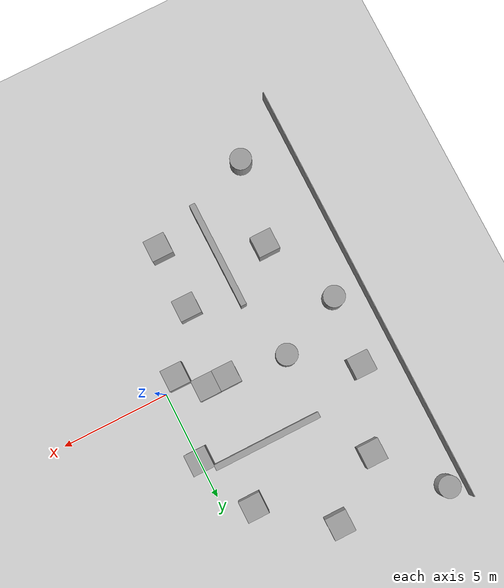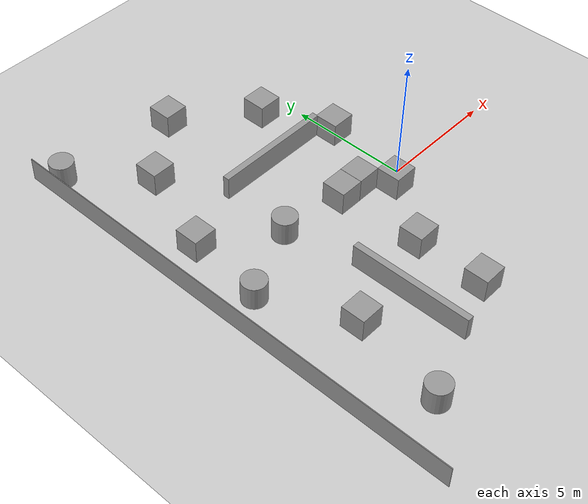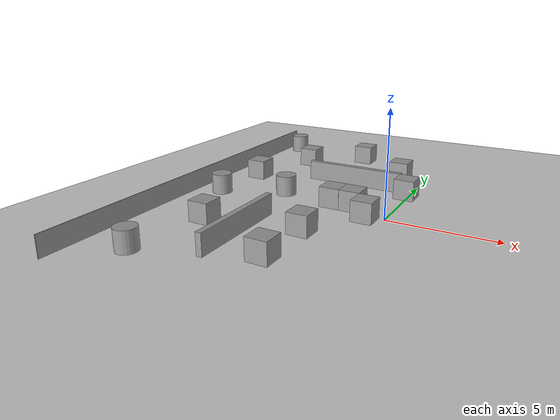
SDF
<sdf version="1.7">
 <world name="default">
  <model name="ground_plane">
   <static>1</static>
   <link name="link">
    <collision name="collision">
     <geometry><plane><normal>0 0 1</normal><size>100 100</size></plane></geometry>
     <surface>
      <contact><collide_bitmask>65535</collide_bitmask></contact>
      <friction><ode><mu>100</mu><mu2>50</mu2></ode></friction>
     </surface>
    </collision>
    <visual name="visual">
     <cast_shadows>0</cast_shadows>
     <geometry><plane><normal>0 0 1</normal><size>100 100</size></plane></geometry>
     <material>
      <script><uri>file://media/materials/scripts/gazebo.material</uri><name>Gazebo/Grey</name></script>
     </material>
    </visual>
   </link>
  </model>
  <model name="m">
   <link name="link_0_clone_0_clone">
    <inertial>
     <mass>0.665554</mass>
     <inertia><ixx>0.0555244</ixx><ixy>0</ixy><ixz>0</ixz><iyy>22.0844</iyy><iyz>0</iyz><izz>22.029</izz></inertia>
    </inertial>
    <pose>-9.73471 -1.11767 0 0 0 -1.57281</pose>
    <visual name="visual">
     <geometry><box><size>19.9295 0.033323 1</size></box></geometry>
     <material>
      <lighting>1</lighting>
      <script><uri>file://media/materials/scripts/gazebo.material</uri><name>Gazebo/Grey</name></script>
      <shader type="pixel"><normal_map>__default__</normal_map></shader>
     </material>
    </visual>
    <collision name="collision">
     <geometry><box><size>19.9295 0.033323 1</size></box></geometry>
     <surface>
      <friction>
       <ode><mu>1</mu><mu2>1</mu2><fdir1>0 0 0</fdir1><slip1>0</slip1><slip2>0</slip2></ode>
       <torsional>
        <coefficient>1</coefficient>
        <patch_radius>0</patch_radius>
        <surface_radius>0</surface_radius>
        <use_patch_radius>1</use_patch_radius>
        <ode><slip>0</slip></ode>
       </torsional>
      </friction>
      <bounce><restitution_coefficient>0</restitution_coefficient><threshold>1e+06</threshold></bounce>
      <contact>
       <collide_without_contact>0</collide_without_contact>
       <collide_without_contact_bitmask>1</collide_without_contact_bitmask>
       <collide_bitmask>1</collide_bitmask>
       <ode>
        <soft_cfm>0</soft_cfm>
        <soft_erp>0.2</soft_erp>
        <kp>1e+13</kp>
        <kd>1</kd>
        <max_vel>0.01</max_vel>
        <min_depth>0</min_depth>
       </ode>
       <bullet>
        <split_impulse>1</split_impulse>
        <split_impulse_penetration_threshold>-0.01</split_impulse_penetration_threshold>
        <soft_cfm>0</soft_cfm>
        <soft_erp>0.2</soft_erp>
        <kp>1e+13</kp>
        <kd>1</kd>
       </bullet>
      </contact>
     </surface>
    </collision>
   </link>
   <link name="link_12_clone">
    <inertial>
     <mass>1</mass>
     <inertia>
      <ixx>0.166667</ixx>
      <ixy>0</ixy>
      <ixz>0</ixz>
      <iyy>0.166667</iyy>
      <iyz>0</iyz>
      <izz>0.166667</izz>
     </inertia>
    </inertial>
    <pose>-2.46639 -6.9622 -0 0 -0 0</pose>
    <visual name="visual">
     <geometry><box><size>1 1 1</size></box></geometry>
     <material>
      <lighting>1</lighting>
      <script><uri>file://media/materials/scripts/gazebo.material</uri><name>Gazebo/Grey</name></script>
      <shader type="pixel"/>
     </material>
    </visual>
    <collision name="collision">
     <geometry><box><size>1 1 1</size></box></geometry>
     <surface>
      <friction>
       <ode><mu>1</mu><mu2>1</mu2><fdir1>0 0 0</fdir1><slip1>0</slip1><slip2>0</slip2></ode>
       <torsional>
        <coefficient>1</coefficient>
        <patch_radius>0</patch_radius>
        <surface_radius>0</surface_radius>
        <use_patch_radius>1</use_patch_radius>
        <ode><slip>0</slip></ode>
       </torsional>
      </friction>
      <bounce><restitution_coefficient>0</restitution_coefficient><threshold>1e+06</threshold></bounce>
      <contact>
       <collide_without_contact>0</collide_without_contact>
       <collide_without_contact_bitmask>1</collide_without_contact_bitmask>
       <collide_bitmask>1</collide_bitmask>
       <ode>
        <soft_cfm>0</soft_cfm>
        <soft_erp>0.2</soft_erp>
        <kp>1e+13</kp>
        <kd>1</kd>
        <max_vel>0.01</max_vel>
        <min_depth>0</min_depth>
       </ode>
       <bullet>
        <split_impulse>1</split_impulse>
        <split_impulse_penetration_threshold>-0.01</split_impulse_penetration_threshold>
        <soft_cfm>0</soft_cfm>
        <soft_erp>0.2</soft_erp>
        <kp>1e+13</kp>
        <kd>1</kd>
       </bullet>
      </contact>
     </surface>
    </collision>
   </link>
   <link name="link_13">
    <inertial>
     <mass>1</mass>
     <inertia><ixx>0.145833</ixx><ixy>0</ixy><ixz>0</ixz><iyy>0.145833</iyy><iyz>0</iyz><izz>0.125</izz></inertia>
    </inertial>
    <pose>-5.35505 -0.19432 -0 0 -0 0</pose>
    <visual name="visual">
     <geometry><cylinder><radius>0.5</radius><length>1</length></cylinder></geometry>
     <material>
      <lighting>1</lighting>
      <script><uri>file://media/materials/scripts/gazebo.material</uri><name>Gazebo/Grey</name></script>
      <shader type="pixel"/>
     </material>
    </visual>
    <collision name="collision">
     <geometry><cylinder><radius>0.5</radius><length>1</length></cylinder></geometry>
     <surface>
      <friction>
       <ode><mu>1</mu><mu2>1</mu2><fdir1>0 0 0</fdir1><slip1>0</slip1><slip2>0</slip2></ode>
       <torsional>
        <coefficient>1</coefficient>
        <patch_radius>0</patch_radius>
        <surface_radius>0</surface_radius>
        <use_patch_radius>1</use_patch_radius>
        <ode><slip>0</slip></ode>
       </torsional>
      </friction>
      <bounce><restitution_coefficient>0</restitution_coefficient><threshold>1e+06</threshold></bounce>
      <contact>
       <collide_without_contact>0</collide_without_contact>
       <collide_without_contact_bitmask>1</collide_without_contact_bitmask>
       <collide_bitmask>1</collide_bitmask>
       <ode>
        <soft_cfm>0</soft_cfm>
        <soft_erp>0.2</soft_erp>
        <kp>1e+13</kp>
        <kd>1</kd>
        <max_vel>0.01</max_vel>
        <min_depth>0</min_depth>
       </ode>
       <bullet>
        <split_impulse>1</split_impulse>
        <split_impulse_penetration_threshold>-0.01</split_impulse_penetration_threshold>
        <soft_cfm>0</soft_cfm>
        <soft_erp>0.2</soft_erp>
        <kp>1e+13</kp>
        <kd>1</kd>
       </bullet>
      </contact>
     </surface>
    </collision>
   </link>
   <link name="link_14">
    <inertial>
     <mass>1</mass>
     <inertia><ixx>0.145833</ixx><ixy>0</ixy><ixz>0</ixz><iyy>0.145833</iyy><iyz>0</iyz><izz>0.125</izz></inertia>
    </inertial>
    <pose>-8.3538 -1.5149 0 0 -0 0</pose>
    <visual name="visual">
     <geometry><cylinder><radius>0.5</radius><length>1</length></cylinder></geometry>
     <material>
      <lighting>1</lighting>
      <script><uri>file://media/materials/scripts/gazebo.material</uri><name>Gazebo/Grey</name></script>
      <shader type="pixel"/>
     </material>
    </visual>
    <collision name="collision">
     <geometry><cylinder><radius>0.5</radius><length>1</length></cylinder></geometry>
     <surface>
      <friction>
       <ode><mu>1</mu><mu2>1</mu2><fdir1>0 0 0</fdir1><slip1>0</slip1><slip2>0</slip2></ode>
       <torsional>
        <coefficient>1</coefficient>
        <patch_radius>0</patch_radius>
        <surface_radius>0</surface_radius>
        <use_patch_radius>1</use_patch_radius>
        <ode><slip>0</slip></ode>
       </torsional>
      </friction>
      <bounce><restitution_coefficient>0</restitution_coefficient><threshold>1e+06</threshold></bounce>
      <contact>
       <collide_without_contact>0</collide_without_contact>
       <collide_without_contact_bitmask>1</collide_without_contact_bitmask>
       <collide_bitmask>1</collide_bitmask>
       <ode>
        <soft_cfm>0</soft_cfm>
        <soft_erp>0.2</soft_erp>
        <kp>1e+13</kp>
        <kd>1</kd>
        <max_vel>0.01</max_vel>
        <min_depth>0</min_depth>
       </ode>
       <bullet>
        <split_impulse>1</split_impulse>
        <split_impulse_penetration_threshold>-0.01</split_impulse_penetration_threshold>
        <soft_cfm>0</soft_cfm>
        <soft_erp>0.2</soft_erp>
        <kp>1e+13</kp>
        <kd>1</kd>
       </bullet>
      </contact>
     </surface>
    </collision>
   </link>
   <link name="link_15">
    <inertial>
     <mass>1</mass>
     <inertia>
      <ixx>0.166667</ixx>
      <ixy>0</ixy>
      <ixz>0</ixz>
      <iyy>0.166667</iyy>
      <iyz>0</iyz>
      <izz>0.166667</izz>
     </inertia>
    </inertial>
    <pose>-6.73247 -4.99641 0.006202 0 -0 0</pose>
    <visual name="visual">
     <geometry><box><size>1 1 1</size></box></geometry>
     <material>
      <lighting>1</lighting>
      <script><uri>file://media/materials/scripts/gazebo.material</uri><name>Gazebo/Grey</name></script>
      <shader type="pixel"/>
     </material>
    </visual>
    <collision name="collision">
     <geometry><box><size>1 1 1</size></box></geometry>
     <surface>
      <friction>
       <ode><mu>1</mu><mu2>1</mu2><fdir1>0 0 0</fdir1><slip1>0</slip1><slip2>0</slip2></ode>
       <torsional>
        <coefficient>1</coefficient>
        <patch_radius>0</patch_radius>
        <surface_radius>0</surface_radius>
        <use_patch_radius>1</use_patch_radius>
        <ode><slip>0</slip></ode>
       </torsional>
      </friction>
      <bounce><restitution_coefficient>0</restitution_coefficient><threshold>1e+06</threshold></bounce>
      <contact>
       <collide_without_contact>0</collide_without_contact>
       <collide_without_contact_bitmask>1</collide_without_contact_bitmask>
       <collide_bitmask>1</collide_bitmask>
       <ode>
        <soft_cfm>0</soft_cfm>
        <soft_erp>0.2</soft_erp>
        <kp>1e+13</kp>
        <kd>1</kd>
        <max_vel>0.01</max_vel>
        <min_depth>0</min_depth>
       </ode>
       <bullet>
        <split_impulse>1</split_impulse>
        <split_impulse_penetration_threshold>-0.01</split_impulse_penetration_threshold>
        <soft_cfm>0</soft_cfm>
        <soft_erp>0.2</soft_erp>
        <kp>1e+13</kp>
        <kd>1</kd>
       </bullet>
      </contact>
     </surface>
    </collision>
   </link>
   <link name="link_16">
    <inertial>
     <mass>1</mass>
     <inertia>
      <ixx>0.166667</ixx>
      <ixy>0</ixy>
      <ixz>0</ixz>
      <iyy>0.166667</iyy>
      <iyz>0</iyz>
      <izz>0.166667</izz>
     </inertia>
    </inertial>
    <pose>0.092071 2.17183 -0 0 -0 0</pose>
    <visual name="visual">
     <geometry><box><size>1 1 1</size></box></geometry>
     <material>
      <lighting>1</lighting>
      <script><uri>file://media/materials/scripts/gazebo.material</uri><name>Gazebo/Grey</name></script>
      <shader type="pixel"/>
     </material>
    </visual>
    <collision name="collision">
     <geometry><box><size>1 1 1</size></box></geometry>
     <surface>
      <friction>
       <ode><mu>1</mu><mu2>1</mu2><fdir1>0 0 0</fdir1><slip1>0</slip1><slip2>0</slip2></ode>
       <torsional>
        <coefficient>1</coefficient>
        <patch_radius>0</patch_radius>
        <surface_radius>0</surface_radius>
        <use_patch_radius>1</use_patch_radius>
        <ode><slip>0</slip></ode>
       </torsional>
      </friction>
      <bounce><restitution_coefficient>0</restitution_coefficient><threshold>1e+06</threshold></bounce>
      <contact>
       <collide_without_contact>0</collide_without_contact>
       <collide_without_contact_bitmask>1</collide_without_contact_bitmask>
       <collide_bitmask>1</collide_bitmask>
       <ode>
        <soft_cfm>0</soft_cfm>
        <soft_erp>0.2</soft_erp>
        <kp>1e+13</kp>
        <kd>1</kd>
        <max_vel>0.01</max_vel>
        <min_depth>0</min_depth>
       </ode>
       <bullet>
        <split_impulse>1</split_impulse>
        <split_impulse_penetration_threshold>-0.01</split_impulse_penetration_threshold>
        <soft_cfm>0</soft_cfm>
        <soft_erp>0.2</soft_erp>
        <kp>1e+13</kp>
        <kd>1</kd>
       </bullet>
      </contact>
     </surface>
    </collision>
   </link>
   <link name="link_17">
    <inertial>
     <mass>1</mass>
     <inertia>
      <ixx>0.166667</ixx>
      <ixy>0</ixy>
      <ixz>0</ixz>
      <iyy>0.166667</iyy>
      <iyz>0</iyz>
      <izz>0.166667</izz>
     </inertia>
    </inertial>
    <pose>-1.59709 -0.551127 0 0 -0 0</pose>
    <visual name="visual">
     <geometry><box><size>1 1 1</size></box></geometry>
     <material>
      <lighting>1</lighting>
      <script><uri>file://media/materials/scripts/gazebo.material</uri><name>Gazebo/Grey</name></script>
      <shader type="pixel"/>
     </material>
    </visual>
    <collision name="collision">
     <geometry><box><size>1 1 1</size></box></geometry>
     <surface>
      <friction>
       <ode><mu>1</mu><mu2>1</mu2><fdir1>0 0 0</fdir1><slip1>0</slip1><slip2>0</slip2></ode>
       <torsional>
        <coefficient>1</coefficient>
        <patch_radius>0</patch_radius>
        <surface_radius>0</surface_radius>
        <use_patch_radius>1</use_patch_radius>
        <ode><slip>0</slip></ode>
       </torsional>
      </friction>
      <bounce><restitution_coefficient>0</restitution_coefficient><threshold>1e+06</threshold></bounce>
      <contact>
       <collide_without_contact>0</collide_without_contact>
       <collide_without_contact_bitmask>1</collide_without_contact_bitmask>
       <collide_bitmask>1</collide_bitmask>
       <ode>
        <soft_cfm>0</soft_cfm>
        <soft_erp>0.2</soft_erp>
        <kp>1e+13</kp>
        <kd>1</kd>
        <max_vel>0.01</max_vel>
        <min_depth>0</min_depth>
       </ode>
       <bullet>
        <split_impulse>1</split_impulse>
        <split_impulse_penetration_threshold>-0.01</split_impulse_penetration_threshold>
        <soft_cfm>0</soft_cfm>
        <soft_erp>0.2</soft_erp>
        <kp>1e+13</kp>
        <kd>1</kd>
       </bullet>
      </contact>
     </surface>
    </collision>
   </link>
   <link name="link_18">
    <inertial>
     <mass>1</mass>
     <inertia>
      <ixx>0.166667</ixx>
      <ixy>0</ixy>
      <ixz>0</ixz>
      <iyy>0.166667</iyy>
      <iyz>0</iyz>
      <izz>0.166667</izz>
     </inertia>
    </inertial>
    <pose>-0.60758 -1.54069 -0 0 -0 0</pose>
    <visual name="visual">
     <geometry><box><size>1 1 1</size></box></geometry>
     <material>
      <lighting>1</lighting>
      <script><uri>file://media/materials/scripts/gazebo.material</uri><name>Gazebo/Grey</name></script>
      <shader type="pixel"/>
     </material>
    </visual>
    <collision name="collision">
     <geometry><box><size>1 1 1</size></box></geometry>
     <surface>
      <friction>
       <ode><mu>1</mu><mu2>1</mu2><fdir1>0 0 0</fdir1><slip1>0</slip1><slip2>0</slip2></ode>
       <torsional>
        <coefficient>1</coefficient>
        <patch_radius>0</patch_radius>
        <surface_radius>0</surface_radius>
        <use_patch_radius>1</use_patch_radius>
        <ode><slip>0</slip></ode>
       </torsional>
      </friction>
      <bounce><restitution_coefficient>0</restitution_coefficient><threshold>1e+06</threshold></bounce>
      <contact>
       <collide_without_contact>0</collide_without_contact>
       <collide_without_contact_bitmask>1</collide_without_contact_bitmask>
       <collide_bitmask>1</collide_bitmask>
       <ode>
        <soft_cfm>0</soft_cfm>
        <soft_erp>0.2</soft_erp>
        <kp>1e+13</kp>
        <kd>1</kd>
        <max_vel>0.01</max_vel>
        <min_depth>0</min_depth>
       </ode>
       <bullet>
        <split_impulse>1</split_impulse>
        <split_impulse_penetration_threshold>-0.01</split_impulse_penetration_threshold>
        <soft_cfm>0</soft_cfm>
        <soft_erp>0.2</soft_erp>
        <kp>1e+13</kp>
        <kd>1</kd>
       </bullet>
      </contact>
     </surface>
    </collision>
   </link>
   <link name="link_19">
    <inertial>
     <mass>1</mass>
     <inertia>
      <ixx>0.166667</ixx>
      <ixy>0</ixy>
      <ixz>0</ixz>
      <iyy>0.166667</iyy>
      <iyz>0</iyz>
      <izz>0.166667</izz>
     </inertia>
    </inertial>
    <pose>-2.59814 -0.556156 -8.7e-05 0 -0 0</pose>
    <visual name="visual">
     <geometry><box><size>1 1 1</size></box></geometry>
     <material>
      <lighting>1</lighting>
      <script><uri>file://media/materials/scripts/gazebo.material</uri><name>Gazebo/Grey</name></script>
      <shader type="pixel"/>
     </material>
    </visual>
    <collision name="collision">
     <geometry><box><size>1 1 1</size></box></geometry>
     <surface>
      <friction>
       <ode><mu>1</mu><mu2>1</mu2><fdir1>0 0 0</fdir1><slip1>0</slip1><slip2>0</slip2></ode>
       <torsional>
        <coefficient>1</coefficient>
        <patch_radius>0</patch_radius>
        <surface_radius>0</surface_radius>
        <use_patch_radius>1</use_patch_radius>
        <ode><slip>0</slip></ode>
       </torsional>
      </friction>
      <bounce><restitution_coefficient>0</restitution_coefficient><threshold>1e+06</threshold></bounce>
      <contact>
       <collide_without_contact>0</collide_without_contact>
       <collide_without_contact_bitmask>1</collide_without_contact_bitmask>
       <collide_bitmask>1</collide_bitmask>
       <ode>
        <soft_cfm>0</soft_cfm>
        <soft_erp>0.2</soft_erp>
        <kp>1e+13</kp>
        <kd>1</kd>
        <max_vel>0.01</max_vel>
        <min_depth>0</min_depth>
       </ode>
       <bullet>
        <split_impulse>1</split_impulse>
        <split_impulse_penetration_threshold>-0.01</split_impulse_penetration_threshold>
        <soft_cfm>0</soft_cfm>
        <soft_erp>0.2</soft_erp>
        <kp>1e+13</kp>
        <kd>1</kd>
       </bullet>
      </contact>
     </surface>
    </collision>
   </link>
   <link name="link_1_2">
    <inertial>
     <mass>1</mass>
     <inertia><ixx>0.145833</ixx><ixy>0</ixy><ixz>0</ixz><iyy>0.145833</iyy><iyz>0</iyz><izz>0.125</izz></inertia>
    </inertial>
    <pose>-8.97748 8.01226 -0.073784 -0.00386 0 0</pose>
    <visual name="visual">
     <geometry><cylinder><radius>0.5</radius><length>1</length></cylinder></geometry>
     <material>
      <lighting>1</lighting>
      <script><uri>file://media/materials/scripts/gazebo.material</uri><name>Gazebo/Grey</name></script>
      <shader type="pixel"/>
     </material>
    </visual>
    <collision name="collision">
     <geometry><cylinder><radius>0.5</radius><length>1</length></cylinder></geometry>
     <surface>
      <friction>
       <ode><mu>1</mu><mu2>1</mu2><fdir1>0 0 0</fdir1><slip1>0</slip1><slip2>0</slip2></ode>
       <torsional>
        <coefficient>1</coefficient>
        <patch_radius>0</patch_radius>
        <surface_radius>0</surface_radius>
        <use_patch_radius>1</use_patch_radius>
        <ode><slip>0</slip></ode>
       </torsional>
      </friction>
      <bounce><restitution_coefficient>0</restitution_coefficient><threshold>1e+06</threshold></bounce>
      <contact>
       <collide_without_contact>0</collide_without_contact>
       <collide_without_contact_bitmask>1</collide_without_contact_bitmask>
       <collide_bitmask>1</collide_bitmask>
       <ode>
        <soft_cfm>0</soft_cfm>
        <soft_erp>0.2</soft_erp>
        <kp>1e+13</kp>
        <kd>1</kd>
        <max_vel>0.01</max_vel>
        <min_depth>0</min_depth>
       </ode>
       <bullet>
        <split_impulse>1</split_impulse>
        <split_impulse_penetration_threshold>-0.01</split_impulse_penetration_threshold>
        <soft_cfm>0</soft_cfm>
        <soft_erp>0.2</soft_erp>
        <kp>1e+13</kp>
        <kd>1</kd>
       </bullet>
      </contact>
     </surface>
    </collision>
   </link>
   <link name="link_1_clone">
    <inertial>
     <mass>1.36399</mass>
     <inertia><ixx>0.122135</ixx><ixy>0</ixy><ixz>0</ixz><iyy>2.98899</iyy><iyz>0</iyz><izz>2.88379</izz></inertia>
    </inertial>
    <pose>-2.8992 2.7445 -0 0 -0 0</pose>
    <visual name="visual">
     <geometry><box><size>5.02953 0.272957 1</size></box></geometry>
     <material>
      <lighting>1</lighting>
      <script><uri>file://media/materials/scripts/gazebo.material</uri><name>Gazebo/Grey</name></script>
      <shader type="pixel"/>
     </material>
    </visual>
    <collision name="collision">
     <geometry><box><size>5.02953 0.272957 1</size></box></geometry>
     <surface>
      <friction>
       <ode><mu>1</mu><mu2>1</mu2><fdir1>0 0 0</fdir1><slip1>0</slip1><slip2>0</slip2></ode>
       <torsional>
        <coefficient>1</coefficient>
        <patch_radius>0</patch_radius>
        <surface_radius>0</surface_radius>
        <use_patch_radius>1</use_patch_radius>
        <ode><slip>0</slip></ode>
       </torsional>
      </friction>
      <bounce><restitution_coefficient>0</restitution_coefficient><threshold>1e+06</threshold></bounce>
      <contact>
       <collide_without_contact>0</collide_without_contact>
       <collide_without_contact_bitmask>1</collide_without_contact_bitmask>
       <collide_bitmask>1</collide_bitmask>
       <ode>
        <soft_cfm>0</soft_cfm>
        <soft_erp>0.2</soft_erp>
        <kp>1e+13</kp>
        <kd>1</kd>
        <max_vel>0.01</max_vel>
        <min_depth>0</min_depth>
       </ode>
       <bullet>
        <split_impulse>1</split_impulse>
        <split_impulse_penetration_threshold>-0.01</split_impulse_penetration_threshold>
        <soft_cfm>0</soft_cfm>
        <soft_erp>0.2</soft_erp>
        <kp>1e+13</kp>
        <kd>1</kd>
       </bullet>
      </contact>
     </surface>
    </collision>
   </link>
   <link name="link_1_clone_0_clone_clone_clone">
    <inertial>
     <mass>1.36399</mass>
     <inertia><ixx>0.122135</ixx><ixy>0</ixy><ixz>0</ixz><iyy>2.98899</iyy><iyz>0</iyz><izz>2.88379</izz></inertia>
    </inertial>
    <pose>-4.65491 -5.47844 0 0 -0 1.57366</pose>
    <visual name="visual">
     <geometry><box><size>5.02953 0.272957 1</size></box></geometry>
     <material>
      <lighting>1</lighting>
      <script><uri>file://media/materials/scripts/gazebo.material</uri><name>Gazebo/Grey</name></script>
      <shader type="pixel"/>
     </material>
    </visual>
    <collision name="collision">
     <geometry><box><size>5.02953 0.272957 1</size></box></geometry>
     <surface>
      <friction>
       <ode><mu>1</mu><mu2>1</mu2><fdir1>0 0 0</fdir1><slip1>0</slip1><slip2>0</slip2></ode>
       <torsional>
        <coefficient>1</coefficient>
        <patch_radius>0</patch_radius>
        <surface_radius>0</surface_radius>
        <use_patch_radius>1</use_patch_radius>
        <ode><slip>0</slip></ode>
       </torsional>
      </friction>
      <bounce><restitution_coefficient>0</restitution_coefficient><threshold>1e+06</threshold></bounce>
      <contact>
       <collide_without_contact>0</collide_without_contact>
       <collide_without_contact_bitmask>1</collide_without_contact_bitmask>
       <collide_bitmask>1</collide_bitmask>
       <ode>
        <soft_cfm>0</soft_cfm>
        <soft_erp>0.2</soft_erp>
        <kp>1e+13</kp>
        <kd>1</kd>
        <max_vel>0.01</max_vel>
        <min_depth>0</min_depth>
       </ode>
       <bullet>
        <split_impulse>1</split_impulse>
        <split_impulse_penetration_threshold>-0.01</split_impulse_penetration_threshold>
        <soft_cfm>0</soft_cfm>
        <soft_erp>0.2</soft_erp>
        <kp>1e+13</kp>
        <kd>1</kd>
       </bullet>
      </contact>
     </surface>
    </collision>
   </link>
   <link name="link_2">
    <inertial>
     <mass>1</mass>
     <inertia>
      <ixx>0.166667</ixx>
      <ixy>0</ixy>
      <ixz>0</ixz>
      <iyy>0.166667</iyy>
      <iyz>0</iyz>
      <izz>0.166667</izz>
     </inertia>
    </inertial>
    <pose>-6.69125 5.24709 0.000363 0 -0 0</pose>
    <visual name="visual">
     <geometry><box><size>1 1 1</size></box></geometry>
     <material>
      <lighting>1</lighting>
      <script><uri>file://media/materials/scripts/gazebo.material</uri><name>Gazebo/Grey</name></script>
      <shader type="pixel"><normal_map>__default__</normal_map></shader>
     </material>
    </visual>
    <collision name="collision">
     <geometry><box><size>1 1 1</size></box></geometry>
     <surface>
      <friction>
       <ode><mu>1</mu><mu2>1</mu2><fdir1>0 0 0</fdir1><slip1>0</slip1><slip2>0</slip2></ode>
       <torsional>
        <coefficient>1</coefficient>
        <patch_radius>0</patch_radius>
        <surface_radius>0</surface_radius>
        <use_patch_radius>1</use_patch_radius>
        <ode><slip>0</slip></ode>
       </torsional>
      </friction>
      <bounce><restitution_coefficient>0</restitution_coefficient><threshold>1e+06</threshold></bounce>
      <contact>
       <collide_without_contact>0</collide_without_contact>
       <collide_without_contact_bitmask>1</collide_without_contact_bitmask>
       <collide_bitmask>1</collide_bitmask>
       <ode>
        <soft_cfm>0</soft_cfm>
        <soft_erp>0.2</soft_erp>
        <kp>1e+13</kp>
        <kd>1</kd>
        <max_vel>0.01</max_vel>
        <min_depth>0</min_depth>
       </ode>
       <bullet>
        <split_impulse>1</split_impulse>
        <split_impulse_penetration_threshold>-0.01</split_impulse_penetration_threshold>
        <soft_cfm>0</soft_cfm>
        <soft_erp>0.2</soft_erp>
        <kp>1e+13</kp>
        <kd>1</kd>
       </bullet>
      </contact>
     </surface>
    </collision>
   </link>
   <link name="link_2_0">
    <inertial>
     <mass>1</mass>
     <inertia><ixx>0.145833</ixx><ixy>0</ixy><ixz>0</ixz><iyy>0.145833</iyy><iyz>0</iyz><izz>0.125</izz></inertia>
    </inertial>
    <pose>-7.48828 -8.83848 -0.011627 -0.004806 1e-06 0</pose>
    <visual name="visual">
     <geometry><cylinder><radius>0.5</radius><length>1</length></cylinder></geometry>
     <material>
      <lighting>1</lighting>
      <script><uri>file://media/materials/scripts/gazebo.material</uri><name>Gazebo/Grey</name></script>
      <shader type="pixel"/>
     </material>
    </visual>
    <collision name="collision">
     <geometry><cylinder><radius>0.5</radius><length>1</length></cylinder></geometry>
     <surface>
      <friction>
       <ode><mu>1</mu><mu2>1</mu2><fdir1>0 0 0</fdir1><slip1>0</slip1><slip2>0</slip2></ode>
       <torsional>
        <coefficient>1</coefficient>
        <patch_radius>0</patch_radius>
        <surface_radius>0</surface_radius>
        <use_patch_radius>1</use_patch_radius>
        <ode><slip>0</slip></ode>
       </torsional>
      </friction>
      <bounce><restitution_coefficient>0</restitution_coefficient><threshold>1e+06</threshold></bounce>
      <contact>
       <collide_without_contact>0</collide_without_contact>
       <collide_without_contact_bitmask>1</collide_without_contact_bitmask>
       <collide_bitmask>1</collide_bitmask>
       <ode>
        <soft_cfm>0</soft_cfm>
        <soft_erp>0.2</soft_erp>
        <kp>1e+13</kp>
        <kd>1</kd>
        <max_vel>0.01</max_vel>
        <min_depth>0</min_depth>
       </ode>
       <bullet>
        <split_impulse>1</split_impulse>
        <split_impulse_penetration_threshold>-0.01</split_impulse_penetration_threshold>
        <soft_cfm>0</soft_cfm>
        <soft_erp>0.2</soft_erp>
        <kp>1e+13</kp>
        <kd>1</kd>
       </bullet>
      </contact>
     </surface>
    </collision>
   </link>
   <link name="link_3">
    <inertial>
     <mass>1</mass>
     <inertia>
      <ixx>0.166667</ixx>
      <ixy>0</ixy>
      <ixz>0</ixz>
      <iyy>0.166667</iyy>
      <iyz>0</iyz>
      <izz>0.166667</izz>
     </inertia>
    </inertial>
    <pose>-4.05988 7.30851 -0.002959 0 -0 0</pose>
    <visual name="visual">
     <geometry><box><size>1 1 1</size></box></geometry>
     <material>
      <lighting>1</lighting>
      <script><uri>file://media/materials/scripts/gazebo.material</uri><name>Gazebo/Grey</name></script>
      <shader type="pixel"/>
     </material>
    </visual>
    <collision name="collision">
     <geometry><box><size>1 1 1</size></box></geometry>
     <surface>
      <friction>
       <ode><mu>1</mu><mu2>1</mu2><fdir1>0 0 0</fdir1><slip1>0</slip1><slip2>0</slip2></ode>
       <torsional>
        <coefficient>1</coefficient>
        <patch_radius>0</patch_radius>
        <surface_radius>0</surface_radius>
        <use_patch_radius>1</use_patch_radius>
        <ode><slip>0</slip></ode>
       </torsional>
      </friction>
      <bounce><restitution_coefficient>0</restitution_coefficient><threshold>1e+06</threshold></bounce>
      <contact>
       <collide_without_contact>0</collide_without_contact>
       <collide_without_contact_bitmask>1</collide_without_contact_bitmask>
       <collide_bitmask>1</collide_bitmask>
       <ode>
        <soft_cfm>0</soft_cfm>
        <soft_erp>0.2</soft_erp>
        <kp>1e+13</kp>
        <kd>1</kd>
        <max_vel>0.01</max_vel>
        <min_depth>0</min_depth>
       </ode>
       <bullet>
        <split_impulse>1</split_impulse>
        <split_impulse_penetration_threshold>-0.01</split_impulse_penetration_threshold>
        <soft_cfm>0</soft_cfm>
        <soft_erp>0.2</soft_erp>
        <kp>1e+13</kp>
        <kd>1</kd>
       </bullet>
      </contact>
     </surface>
    </collision>
   </link>
   <link name="link_3_0">
    <inertial>
     <mass>1</mass>
     <inertia>
      <ixx>0.166667</ixx>
      <ixy>0</ixy>
      <ixz>0</ixz>
      <iyy>0.166667</iyy>
      <iyz>0</iyz>
      <izz>0.166667</izz>
     </inertia>
    </inertial>
    <pose>-2.39736 -4.04043 -0.033908 -0.004806 1e-06 0</pose>
    <visual name="visual">
     <geometry><box><size>1 1 1</size></box></geometry>
     <material>
      <lighting>1</lighting>
      <script><uri>file://media/materials/scripts/gazebo.material</uri><name>Gazebo/Grey</name></script>
      <shader type="pixel"/>
     </material>
    </visual>
    <collision name="collision">
     <geometry><box><size>1 1 1</size></box></geometry>
     <surface>
      <friction>
       <ode><mu>1</mu><mu2>1</mu2><fdir1>0 0 0</fdir1><slip1>0</slip1><slip2>0</slip2></ode>
       <torsional>
        <coefficient>1</coefficient>
        <patch_radius>0</patch_radius>
        <surface_radius>0</surface_radius>
        <use_patch_radius>1</use_patch_radius>
        <ode><slip>0</slip></ode>
       </torsional>
      </friction>
      <bounce><restitution_coefficient>0</restitution_coefficient><threshold>1e+06</threshold></bounce>
      <contact>
       <collide_without_contact>0</collide_without_contact>
       <collide_without_contact_bitmask>1</collide_without_contact_bitmask>
       <collide_bitmask>1</collide_bitmask>
       <ode>
        <soft_cfm>0</soft_cfm>
        <soft_erp>0.2</soft_erp>
        <kp>1e+13</kp>
        <kd>1</kd>
        <max_vel>0.01</max_vel>
        <min_depth>0</min_depth>
       </ode>
       <bullet>
        <split_impulse>1</split_impulse>
        <split_impulse_penetration_threshold>-0.01</split_impulse_penetration_threshold>
        <soft_cfm>0</soft_cfm>
        <soft_erp>0.2</soft_erp>
        <kp>1e+13</kp>
        <kd>1</kd>
       </bullet>
      </contact>
     </surface>
    </collision>
   </link>
   <link name="link_4">
    <inertial>
     <mass>1</mass>
     <inertia>
      <ixx>0.166667</ixx>
      <ixy>0</ixy>
      <ixz>0</ixz>
      <iyy>0.166667</iyy>
      <iyz>0</iyz>
      <izz>0.166667</izz>
     </inertia>
    </inertial>
    <pose>-8.05296 1.65939 -0.00011 0 -0 0</pose>
    <visual name="visual">
     <geometry><box><size>1 1 1</size></box></geometry>
     <material>
      <lighting>1</lighting>
      <script><uri>file://media/materials/scripts/gazebo.material</uri><name>Gazebo/Grey</name></script>
      <shader type="pixel"/>
     </material>
    </visual>
    <collision name="collision">
     <geometry><box><size>1 1 1</size></box></geometry>
     <surface>
      <friction>
       <ode><mu>1</mu><mu2>1</mu2><fdir1>0 0 0</fdir1><slip1>0</slip1><slip2>0</slip2></ode>
       <torsional>
        <coefficient>1</coefficient>
        <patch_radius>0</patch_radius>
        <surface_radius>0</surface_radius>
        <use_patch_radius>1</use_patch_radius>
        <ode><slip>0</slip></ode>
       </torsional>
      </friction>
      <bounce><restitution_coefficient>0</restitution_coefficient><threshold>1e+06</threshold></bounce>
      <contact>
       <collide_without_contact>0</collide_without_contact>
       <collide_without_contact_bitmask>1</collide_without_contact_bitmask>
       <collide_bitmask>1</collide_bitmask>
       <ode>
        <soft_cfm>0</soft_cfm>
        <soft_erp>0.2</soft_erp>
        <kp>1e+13</kp>
        <kd>1</kd>
        <max_vel>0.01</max_vel>
        <min_depth>0</min_depth>
       </ode>
       <bullet>
        <split_impulse>1</split_impulse>
        <split_impulse_penetration_threshold>-0.01</split_impulse_penetration_threshold>
        <soft_cfm>0</soft_cfm>
        <soft_erp>0.2</soft_erp>
        <kp>1e+13</kp>
        <kd>1</kd>
       </bullet>
      </contact>
     </surface>
    </collision>
   </link>
   <link name="link_5">
    <inertial>
     <mass>1</mass>
     <inertia>
      <ixx>0.166667</ixx>
      <ixy>0</ixy>
      <ixz>0</ixz>
      <iyy>0.166667</iyy>
      <iyz>0</iyz>
      <izz>0.166667</izz>
     </inertia>
    </inertial>
    <pose>-1.10362 4.98196 -0 0 -0 0</pose>
    <visual name="visual">
     <geometry><box><size>1 1 1</size></box></geometry>
     <material>
      <lighting>1</lighting>
      <script><uri>file://media/materials/scripts/gazebo.material</uri><name>Gazebo/Grey</name></script>
      <shader type="pixel"/>
     </material>
    </visual>
    <collision name="collision">
     <geometry><box><size>1 1 1</size></box></geometry>
     <surface>
      <friction>
       <ode><mu>1</mu><mu2>1</mu2><fdir1>0 0 0</fdir1><slip1>0</slip1><slip2>0</slip2></ode>
       <torsional>
        <coefficient>1</coefficient>
        <patch_radius>0</patch_radius>
        <surface_radius>0</surface_radius>
        <use_patch_radius>1</use_patch_radius>
        <ode><slip>0</slip></ode>
       </torsional>
      </friction>
      <bounce><restitution_coefficient>0</restitution_coefficient><threshold>1e+06</threshold></bounce>
      <contact>
       <collide_without_contact>0</collide_without_contact>
       <collide_without_contact_bitmask>1</collide_without_contact_bitmask>
       <collide_bitmask>1</collide_bitmask>
       <ode>
        <soft_cfm>0</soft_cfm>
        <soft_erp>0.2</soft_erp>
        <kp>1e+13</kp>
        <kd>1</kd>
        <max_vel>0.01</max_vel>
        <min_depth>0</min_depth>
       </ode>
       <bullet>
        <split_impulse>1</split_impulse>
        <split_impulse_penetration_threshold>-0.01</split_impulse_penetration_threshold>
        <soft_cfm>0</soft_cfm>
        <soft_erp>0.2</soft_erp>
        <kp>1e+13</kp>
        <kd>1</kd>
       </bullet>
      </contact>
     </surface>
    </collision>
   </link>
   <static>0</static>
   <pose>-0.158128 1.05832 0.542852 0.00386 -0 0</pose>
  </model>
 </world>
</sdf>
